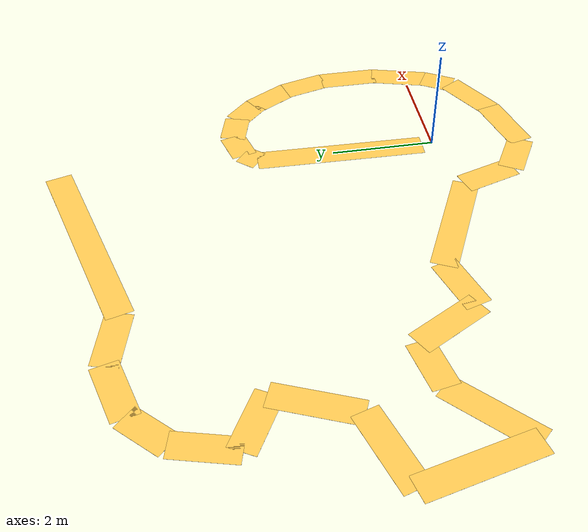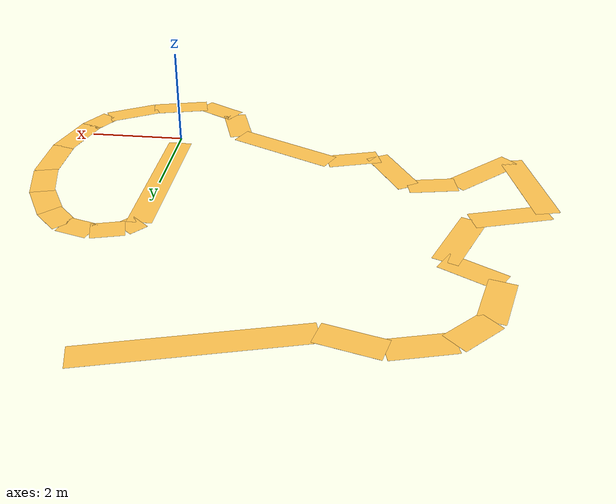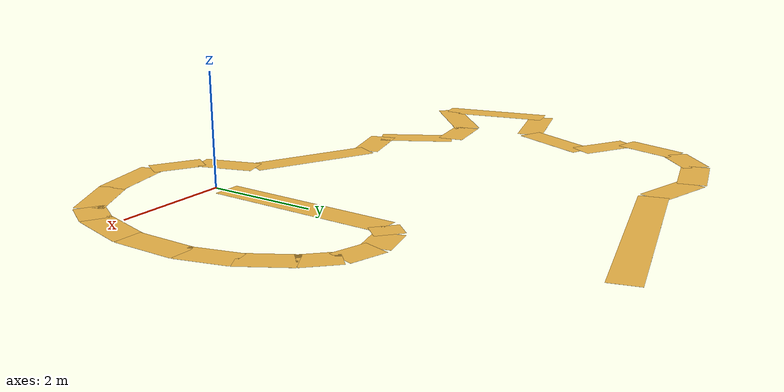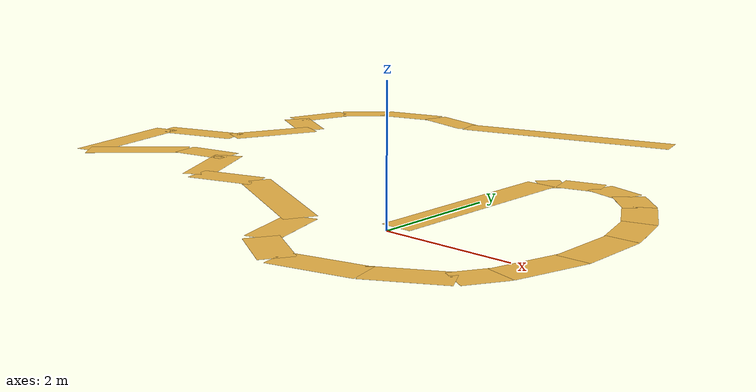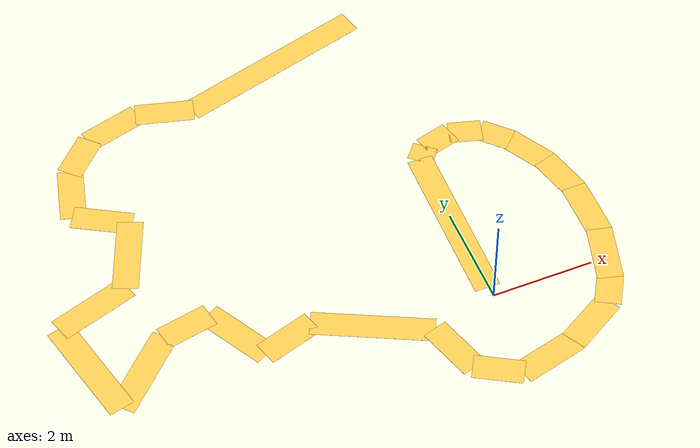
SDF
<?xml version='1.0'?>
<sdf version='1.7'>
  <model name='serit'>
    <pose>-2.602 2.77923 0 0 -0 0</pose>
    <link name='Wall_20'>
      <collision name='Wall_20_Collision'>
        <geometry>
          <box>
            <size>0.392749 0.5 0.001</size>
          </box>
        </geometry>
        <pose>0 0 0.0005 0 -0 0</pose>
      </collision>
      <visual name='Wall_20_Visual'>
        <pose>0 0 0.0005 0 -0 0</pose>
        <geometry>
          <box>
            <size>0.392749 0.5 0.001</size>
          </box>
        </geometry>
        <material>
          <script>
            <uri>file://media/materials/scripts/gazebo.material</uri>
            <name>Gazebo/Grey</name>
          </script>
          <ambient>1 0.764706 0.305882 1</ambient>
        </material>
        <meta>
          <layer>0</layer>
        </meta>
      </visual>
      <pose>2.73676 0.830269 0 0 -0 0.856654</pose>
    </link>
    <link name='Wall_21'>
      <collision name='Wall_21_Collision'>
        <geometry>
          <box>
            <size>0.650468 0.5 0.001</size>
          </box>
        </geometry>
        <pose>0 0 0.0005 0 -0 0</pose>
      </collision>
      <visual name='Wall_21_Visual'>
        <pose>0 0 0.0005 0 -0 0</pose>
        <geometry>
          <box>
            <size>0.650468 0.5 0.001</size>
          </box>
        </geometry>
        <material>
          <script>
            <uri>file://media/materials/scripts/gazebo.material</uri>
            <name>Gazebo/Grey</name>
          </script>
          <ambient>1 0.764706 0.305882 1</ambient>
        </material>
        <meta>
          <layer>0</layer>
        </meta>
      </visual>
      <pose>3.139 1.03727 0 0 -0 0.261139</pose>
    </link>
    <link name='Wall_22'>
      <collision name='Wall_22_Collision'>
        <geometry>
          <box>
            <size>0.653043 0.5 0.001</size>
          </box>
        </geometry>
        <pose>0 0 0.0005 0 -0 0</pose>
      </collision>
      <visual name='Wall_22_Visual'>
        <pose>0 0 0.0005 0 -0 0</pose>
        <geometry>
          <box>
            <size>0.653043 0.5 0.001</size>
          </box>
        </geometry>
        <material>
          <script>
            <uri>file://media/materials/scripts/gazebo.material</uri>
            <name>Gazebo/Grey</name>
          </script>
          <ambient>1 0.764706 0.305882 1</ambient>
        </material>
        <meta>
          <layer>0</layer>
        </meta>
      </visual>
      <pose>3.719 1.03127 0 0 -0 -0.280348</pose>
    </link>
    <link name='Wall_23'>
      <collision name='Wall_23_Collision'>
        <geometry>
          <box>
            <size>0.649371 0.5 0.001</size>
          </box>
        </geometry>
        <pose>0 0 0.0005 0 -0 0</pose>
      </collision>
      <visual name='Wall_23_Visual'>
        <pose>0 0 0.0005 0 -0 0</pose>
        <geometry>
          <box>
            <size>0.649371 0.5 0.001</size>
          </box>
        </geometry>
        <material>
          <script>
            <uri>file://media/materials/scripts/gazebo.material</uri>
            <name>Gazebo/Grey</name>
          </script>
          <ambient>1 0.764706 0.305882 1</ambient>
        </material>
        <meta>
          <layer>0</layer>
        </meta>
      </visual>
      <pose>4.221 0.73577 0 0 -0 -0.785398</pose>
    </link>
    <link name='Wall_24'>
      <collision name='Wall_24_Collision'>
        <geometry>
          <box>
            <size>0.899895 0.5 0.001</size>
          </box>
        </geometry>
        <pose>0 0 0.0005 0 -0 0</pose>
      </collision>
      <visual name='Wall_24_Visual'>
        <pose>0 0 0.0005 0 -0 0</pose>
        <geometry>
          <box>
            <size>0.899895 0.5 0.001</size>
          </box>
        </geometry>
        <material>
          <script>
            <uri>file://media/materials/scripts/gazebo.material</uri>
            <name>Gazebo/Grey</name>
          </script>
          <ambient>1 0.764706 0.305882 1</ambient>
        </material>
        <meta>
          <layer>0</layer>
        </meta>
      </visual>
      <pose>4.6455 0.155769 0 0 -0 -1.04713</pose>
    </link>
    <link name='Wall_25'>
      <collision name='Wall_25_Collision'>
        <geometry>
          <box>
            <size>0.899866 0.5 0.001</size>
          </box>
        </geometry>
        <pose>0 0 0.0005 0 -0 0</pose>
      </collision>
      <visual name='Wall_25_Visual'>
        <pose>0 0 0.0005 0 -0 0</pose>
        <geometry>
          <box>
            <size>0.899866 0.5 0.001</size>
          </box>
        </geometry>
        <material>
          <script>
            <uri>file://media/materials/scripts/gazebo.material</uri>
            <name>Gazebo/Grey</name>
          </script>
          <ambient>1 0.764706 0.305882 1</ambient>
        </material>
        <meta>
          <layer>0</layer>
        </meta>
      </visual>
      <pose>4.968 -0.62273 0 0 -0 -1.30898</pose>
    </link>
    <link name='Wall_32'>
      <collision name='Wall_32_Collision'>
        <geometry>
          <box>
            <size>1.14993 0.5 0.001</size>
          </box>
        </geometry>
        <pose>0 0 0.0005 0 -0 0</pose>
      </collision>
      <visual name='Wall_32_Visual'>
        <pose>0 0 0.0005 0 -0 0</pose>
        <geometry>
          <box>
            <size>1.14993 0.5 0.001</size>
          </box>
        </geometry>
        <material>
          <script>
            <uri>file://media/materials/scripts/gazebo.material</uri>
            <name>Gazebo/Grey</name>
          </script>
          <ambient>1 0.764706 0.305882 1</ambient>
        </material>
        <meta>
          <layer>0</layer>
        </meta>
      </visual>
      <pose>5.078 -1.58323 0 0 -0 -1.5708</pose>
    </link>
    <link name='Wall_33'>
      <collision name='Wall_33_Collision'>
        <geometry>
          <box>
            <size>1.14997 0.5 0.001</size>
          </box>
        </geometry>
        <pose>0 0 0.0005 0 -0 0</pose>
      </collision>
      <visual name='Wall_33_Visual'>
        <pose>0 0 0.0005 0 -0 0</pose>
        <geometry>
          <box>
            <size>1.14997 0.5 0.001</size>
          </box>
        </geometry>
        <material>
          <script>
            <uri>file://media/materials/scripts/gazebo.material</uri>
            <name>Gazebo/Grey</name>
          </script>
          <ambient>1 0.764706 0.305882 1</ambient>
        </material>
        <meta>
          <layer>0</layer>
        </meta>
      </visual>
      <pose>4.9355 -2.66423 0 0 -0 -1.83298</pose>
    </link>
    <link name='Wall_34'>
      <collision name='Wall_34_Collision'>
        <geometry>
          <box>
            <size>0.650314 0.5 0.001</size>
          </box>
        </geometry>
        <pose>0 0 0.0005 0 -0 0</pose>
      </collision>
      <visual name='Wall_34_Visual'>
        <pose>0 0 0.0005 0 -0 0</pose>
        <geometry>
          <box>
            <size>0.650314 0.5 0.001</size>
          </box>
        </geometry>
        <material>
          <script>
            <uri>file://media/materials/scripts/gazebo.material</uri>
            <name>Gazebo/Grey</name>
          </script>
          <ambient>1 0.764706 0.305882 1</ambient>
        </material>
        <meta>
          <layer>0</layer>
        </meta>
      </visual>
      <pose>4.643 -3.45523 0 0 -0 -2.09408</pose>
    </link>
    <link name='Wall_35'>
      <collision name='Wall_35_Collision'>
        <geometry>
          <box>
            <size>1.13588 0.5 0.001</size>
          </box>
        </geometry>
        <pose>0 0 0.0005 0 -0 0</pose>
      </collision>
      <visual name='Wall_35_Visual'>
        <pose>0 0 0.0005 0 -0 0</pose>
        <geometry>
          <box>
            <size>1.13588 0.5 0.001</size>
          </box>
        </geometry>
        <material>
          <script>
            <uri>file://media/materials/scripts/gazebo.material</uri>
            <name>Gazebo/Grey</name>
          </script>
          <ambient>1 0.764706 0.305882 1</ambient>
        </material>
        <meta>
          <layer>0</layer>
        </meta>
      </visual>
      <pose>4.02197 -3.98526 0 0 -0 -2.62106</pose>
    </link>
    <link name='Wall_36'>
      <collision name='Wall_36_Collision'>
        <geometry>
          <box>
            <size>1.24467 0.5 0.001</size>
          </box>
        </geometry>
        <pose>0 0 0.0005 0 -0 0</pose>
      </collision>
      <visual name='Wall_36_Visual'>
        <pose>0 0 0.0005 0 -0 0</pose>
        <geometry>
          <box>
            <size>1.24467 0.5 0.001</size>
          </box>
        </geometry>
        <material>
          <script>
            <uri>file://media/materials/scripts/gazebo.material</uri>
            <name>Gazebo/Grey</name>
          </script>
          <ambient>1 0.764706 0.305882 1</ambient>
        </material>
        <meta>
          <layer>0</layer>
        </meta>
      </visual>
      <pose>2.97147 -4.40524 0 0 -0 -2.89642</pose>
    </link>
    <link name='Wall_40'>
      <collision name='Wall_40_Collision'>
        <geometry>
          <box>
            <size>1.11268 0.5 0.001</size>
          </box>
        </geometry>
        <pose>0 0 0.0005 0 -0 0</pose>
      </collision>
      <visual name='Wall_40_Visual'>
        <pose>0 0 0.0005 0 -0 0</pose>
        <geometry>
          <box>
            <size>1.11268 0.5 0.001</size>
          </box>
        </geometry>
        <material>
          <script>
            <uri>file://media/materials/scripts/gazebo.material</uri>
            <name>Gazebo/Grey</name>
          </script>
          <ambient>1 0.764706 0.305882 1</ambient>
        </material>
        <meta>
          <layer>0</layer>
        </meta>
      </visual>
      <pose>1.45197 -3.59356 0 0 -0 1.87673</pose>
    </link>
    <link name='Wall_41'>
      <collision name='Wall_41_Collision'>
        <geometry>
          <box>
            <size>2.31479 0.5 0.001</size>
          </box>
        </geometry>
        <pose>0 0 0.0005 0 -0 0</pose>
      </collision>
      <visual name='Wall_41_Visual'>
        <pose>0 0 0.0005 0 -0 0</pose>
        <geometry>
          <box>
            <size>2.31479 0.5 0.001</size>
          </box>
        </geometry>
        <material>
          <script>
            <uri>file://media/materials/scripts/gazebo.material</uri>
            <name>Gazebo/Grey</name>
          </script>
          <ambient>1 0.764706 0.305882 1</ambient>
        </material>
        <meta>
          <layer>0</layer>
        </meta>
      </visual>
      <pose>0.256952 -2.5899 0 0 -0 2.68723</pose>
    </link>
    <link name='Wall_42'>
      <collision name='Wall_42_Collision'>
        <geometry>
          <box>
            <size>1.12382 0.5 0.001</size>
          </box>
        </geometry>
        <pose>0 0 0.0005 0 -0 0</pose>
      </collision>
      <visual name='Wall_42_Visual'>
        <pose>0 0 0.0005 0 -0 0</pose>
        <geometry>
          <box>
            <size>1.12382 0.5 0.001</size>
          </box>
        </geometry>
        <material>
          <script>
            <uri>file://media/materials/scripts/gazebo.material</uri>
            <name>Gazebo/Grey</name>
          </script>
          <ambient>1 0.764706 0.305882 1</ambient>
        </material>
        <meta>
          <layer>0</layer>
        </meta>
      </visual>
      <pose>-1.25675 -2.24907 0 0 -0 -2.84645</pose>
    </link>
    <link name='Wall_43'>
      <collision name='Wall_43_Collision'>
        <geometry>
          <box>
            <size>1.41446 0.5 0.001</size>
          </box>
        </geometry>
        <pose>0 0 0.0005 0 -0 0</pose>
      </collision>
      <visual name='Wall_43_Visual'>
        <pose>0 0 0.0005 0 -0 0</pose>
        <geometry>
          <box>
            <size>1.41446 0.5 0.001</size>
          </box>
        </geometry>
        <material>
          <script>
            <uri>file://media/materials/scripts/gazebo.material</uri>
            <name>Gazebo/Grey</name>
          </script>
          <ambient>1 0.764706 0.305882 1</ambient>
        </material>
        <meta>
          <layer>0</layer>
        </meta>
      </visual>
      <pose>-2.10245 -1.80925 0 0 -0 2.07903</pose>
    </link>
    <link name='Wall_52'>
      <collision name='Wall_52_Collision'>
        <geometry>
          <box>
            <size>0.996585 0.5 0.001</size>
          </box>
        </geometry>
        <pose>0 0 0.0005 0 -0 0</pose>
      </collision>
      <visual name='Wall_52_Visual'>
        <pose>0 0 0.0005 0 -0 0</pose>
        <geometry>
          <box>
            <size>0.996585 0.5 0.001</size>
          </box>
        </geometry>
        <material>
          <script>
            <uri>file://media/materials/scripts/gazebo.material</uri>
            <name>Gazebo/Grey</name>
          </script>
          <ambient>1 0.764706 0.305882 1</ambient>
        </material>
        <meta>
          <layer>0</layer>
        </meta>
      </visual>
      <pose>-2.8992 -1.30274 0 0 -0 -2.95137</pose>
    </link>
    <link name='Wall_53'>
      <collision name='Wall_53_Collision'>
        <geometry>
          <box>
            <size>1.72746 0.5 0.001</size>
          </box>
        </geometry>
        <pose>0 0 0.0005 0 -0 0</pose>
      </collision>
      <visual name='Wall_53_Visual'>
        <pose>0 0 0.0005 0 -0 0</pose>
        <geometry>
          <box>
            <size>1.72746 0.5 0.001</size>
          </box>
        </geometry>
        <material>
          <script>
            <uri>file://media/materials/scripts/gazebo.material</uri>
            <name>Gazebo/Grey</name>
          </script>
          <ambient>1 0.764706 0.305882 1</ambient>
        </material>
        <meta>
          <layer>0</layer>
        </meta>
      </visual>
      <pose>-3.96972 -1.95484 0 0 -0 -2.37783</pose>
    </link>
    <link name='Wall_54'>
      <collision name='Wall_54_Collision'>
        <geometry>
          <box>
            <size>2.14642 0.5 0.001</size>
          </box>
        </geometry>
        <pose>0 0 0.0005 0 -0 0</pose>
      </collision>
      <visual name='Wall_54_Visual'>
        <pose>0 0 0.0005 0 -0 0</pose>
        <geometry>
          <box>
            <size>2.14642 0.5 0.001</size>
          </box>
        </geometry>
        <material>
          <script>
            <uri>file://media/materials/scripts/gazebo.material</uri>
            <name>Gazebo/Grey</name>
          </script>
          <ambient>1 0.764706 0.305882 1</ambient>
        </material>
        <meta>
          <layer>0</layer>
        </meta>
      </visual>
      <pose>-4.83577 -1.51523 0 0 -0 1.80455</pose>
    </link>
    <link name='Wall_55'>
      <collision name='Wall_55_Collision'>
        <geometry>
          <box>
            <size>1.54863 0.5 0.001</size>
          </box>
        </geometry>
        <pose>0 0 0.0005 0 -0 0</pose>
      </collision>
      <visual name='Wall_55_Visual'>
        <pose>0 0 0.0005 0 -0 0</pose>
        <geometry>
          <box>
            <size>1.54863 0.5 0.001</size>
          </box>
        </geometry>
        <material>
          <script>
            <uri>file://media/materials/scripts/gazebo.material</uri>
            <name>Gazebo/Grey</name>
          </script>
          <ambient>1 0.764706 0.305882 1</ambient>
        </material>
        <meta>
          <layer>0</layer>
        </meta>
      </visual>
      <pose>-4.34619 -0.271012 0 0 -0 0.304304</pose>
    </link>
    <link name='Wall_56'>
      <collision name='Wall_56_Collision'>
        <geometry>
          <box>
            <size>1.55807 0.5 0.001</size>
          </box>
        </geometry>
        <pose>0 0 0.0005 0 -0 0</pose>
      </collision>
      <visual name='Wall_56_Visual'>
        <pose>0 0 0.0005 0 -0 0</pose>
        <geometry>
          <box>
            <size>1.55807 0.5 0.001</size>
          </box>
        </geometry>
        <material>
          <script>
            <uri>file://media/materials/scripts/gazebo.material</uri>
            <name>Gazebo/Grey</name>
          </script>
          <ambient>1 0.764706 0.305882 1</ambient>
        </material>
        <meta>
          <layer>0</layer>
        </meta>
      </visual>
      <pose>-3.35275 0.662025 0 0 -0 1.17347</pose>
    </link>
    <link name='Wall_57'>
      <collision name='Wall_57_Collision'>
        <geometry>
          <box>
            <size>1.15731 0.5 0.001</size>
          </box>
        </geometry>
        <pose>0 0 0.0005 0 -0 0</pose>
      </collision>
      <visual name='Wall_57_Visual'>
        <pose>0 0 0.0005 0 -0 0</pose>
        <geometry>
          <box>
            <size>1.15731 0.5 0.001</size>
          </box>
        </geometry>
        <material>
          <script>
            <uri>file://media/materials/scripts/gazebo.material</uri>
            <name>Gazebo/Grey</name>
          </script>
          <ambient>1 0.764706 0.305882 1</ambient>
        </material>
        <meta>
          <layer>0</layer>
        </meta>
      </visual>
      <pose>-3.52837 1.61893 0 0 -0 2.62214</pose>
    </link>
    <link name='Wall_58'>
      <collision name='Wall_58_Collision'>
        <geometry>
          <box>
            <size>1.14999 0.5 0.001</size>
          </box>
        </geometry>
        <pose>0 0 0.0005 0 -0 0</pose>
      </collision>
      <visual name='Wall_58_Visual'>
        <pose>0 0 0.0005 0 -0 0</pose>
        <geometry>
          <box>
            <size>1.14999 0.5 0.001</size>
          </box>
        </geometry>
        <material>
          <script>
            <uri>file://media/materials/scripts/gazebo.material</uri>
            <name>Gazebo/Grey</name>
          </script>
          <ambient>1 0.764706 0.305882 1</ambient>
        </material>
        <meta>
          <layer>0</layer>
        </meta>
      </visual>
      <pose>-3.8665 2.42477 0 0 -0 1.30861</pose>
    </link>
    <link name='Wall_59'>
      <collision name='Wall_59_Collision'>
        <geometry>
          <box>
            <size>0.900323 0.5 0.001</size>
          </box>
        </geometry>
        <pose>0 0 0.0005 0 -0 0</pose>
      </collision>
      <visual name='Wall_59_Visual'>
        <pose>0 0 0.0005 0 -0 0</pose>
        <geometry>
          <box>
            <size>0.900323 0.5 0.001</size>
          </box>
        </geometry>
        <material>
          <script>
            <uri>file://media/materials/scripts/gazebo.material</uri>
            <name>Gazebo/Grey</name>
          </script>
          <ambient>1 0.764706 0.305882 1</ambient>
        </material>
        <meta>
          <layer>0</layer>
        </meta>
      </visual>
      <pose>-3.4235 3.25627 0 0 -0 0.785398</pose>
    </link>
    <link name='Wall_60'>
      <collision name='Wall_60_Collision'>
        <geometry>
          <box>
            <size>1.15019 0.5 0.001</size>
          </box>
        </geometry>
        <pose>0 0 0.0005 0 -0 0</pose>
      </collision>
      <visual name='Wall_60_Visual'>
        <pose>0 0 0.0005 0 -0 0</pose>
        <geometry>
          <box>
            <size>1.15019 0.5 0.001</size>
          </box>
        </geometry>
        <material>
          <script>
            <uri>file://media/materials/scripts/gazebo.material</uri>
            <name>Gazebo/Grey</name>
          </script>
          <ambient>1 0.764706 0.305882 1</ambient>
        </material>
        <meta>
          <layer>0</layer>
        </meta>
      </visual>
      <pose>-2.5915 3.69927 0 0 -0 0.261949</pose>
    </link>
    <link name='Wall_61'>
      <collision name='Wall_61_Collision'>
        <geometry>
          <box>
            <size>1.14956 0.5 0.001</size>
          </box>
        </geometry>
        <pose>0 0 0.0005 0 -0 0</pose>
      </collision>
      <visual name='Wall_61_Visual'>
        <pose>0 0 0.0005 0 -0 0</pose>
        <geometry>
          <box>
            <size>1.14956 0.5 0.001</size>
          </box>
        </geometry>
        <material>
          <script>
            <uri>file://media/materials/scripts/gazebo.material</uri>
            <name>Gazebo/Grey</name>
          </script>
          <ambient>1 0.764706 0.305882 1</ambient>
        </material>
        <meta>
          <layer>0</layer>
        </meta>
      </visual>
      <pose>-1.529 3.69927 0 0 -0 -0.262184</pose>
    </link>
    <link name='Wall_62'>
      <collision name='Wall_62_Collision'>
        <geometry>
          <box>
            <size>3.90023 0.5 0.001</size>
          </box>
        </geometry>
        <pose>0 0 0.0005 0 -0 0</pose>
      </collision>
      <visual name='Wall_62_Visual'>
        <pose>0 0 0.0005 0 -0 0</pose>
        <geometry>
          <box>
            <size>3.90023 0.5 0.001</size>
          </box>
        </geometry>
        <material>
          <script>
            <uri>file://media/materials/scripts/gazebo.material</uri>
            <name>Gazebo/Grey</name>
          </script>
          <ambient>1 0.764706 0.305882 1</ambient>
        </material>
        <meta>
          <layer>0</layer>
        </meta>
      </visual>
      <pose>0.861502 4.05527 0 0 -0 0.261924</pose>
    </link>
    <link name='Wall_70'>
      <collision name='Wall_70_Collision'>
        <geometry>
          <box>
            <size>3.30042 0.5 0.001</size>
          </box>
        </geometry>
        <pose>0 0 0.0005 0 -0 0</pose>
      </collision>
      <visual name='Wall_70_Visual'>
        <pose>0 0 0.0005 0 -0 0</pose>
        <geometry>
          <box>
            <size>3.30042 0.5 0.001</size>
          </box>
        </geometry>
        <material>
          <script>
            <uri>file://media/materials/scripts/gazebo.material</uri>
            <name>Gazebo/Grey</name>
          </script>
          <ambient>1 0.764706 0.305882 1</ambient>
        </material>
        <meta>
          <layer>0</layer>
        </meta>
      </visual>
      <pose>2.59851 -0.924231 0 0 -0 1.5548</pose>
    </link>
    <link name='Wall_72'>
      <collision name='Wall_72_Collision'>
        <geometry>
          <box>
            <size>0.9505 0.5 0.001</size>
          </box>
        </geometry>
        <pose>0 0 0.0005 0 -0 0</pose>
      </collision>
      <visual name='Wall_72_Visual'>
        <pose>0 0 0.0005 0 -0 0</pose>
        <geometry>
          <box>
            <size>0.9505 0.5 0.001</size>
          </box>
        </geometry>
        <material>
          <script>
            <uri>file://media/materials/scripts/gazebo.material</uri>
            <name>Gazebo/Grey</name>
          </script>
          <ambient>1 0.764706 0.305882 1</ambient>
        </material>
        <meta>
          <layer>0</layer>
        </meta>
      </visual>
      <pose>2.002 -4.32523 0 0 -0 -0.523278</pose>
    </link>
    <static>1</static>
  </model>
</sdf>
